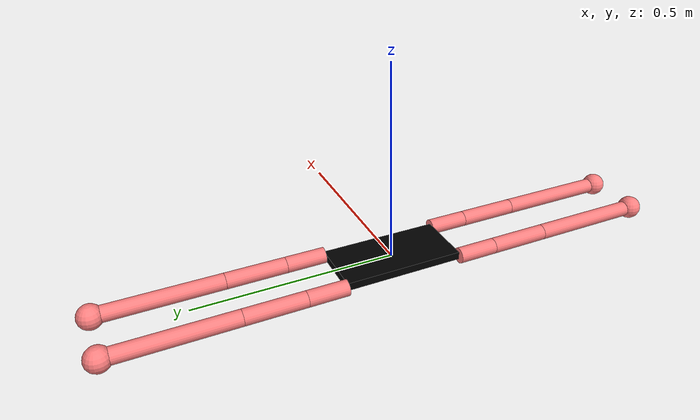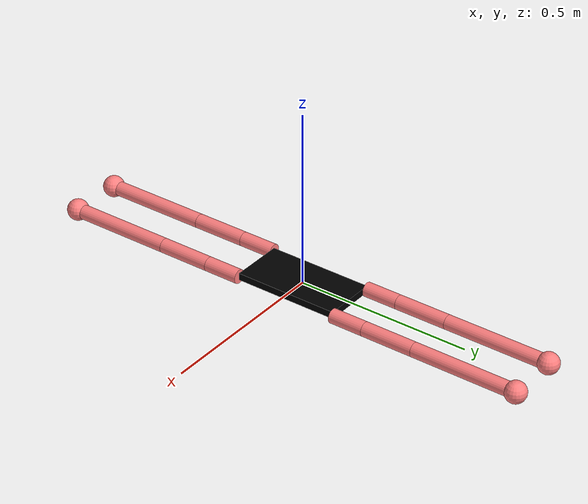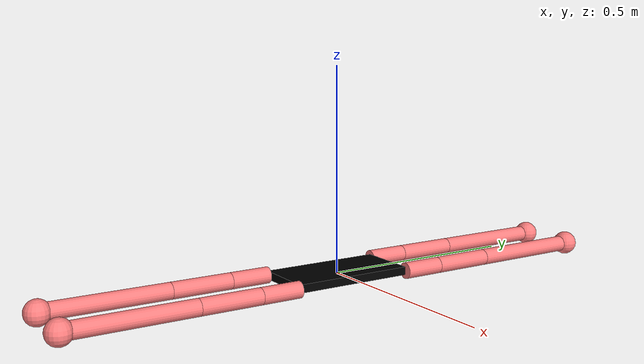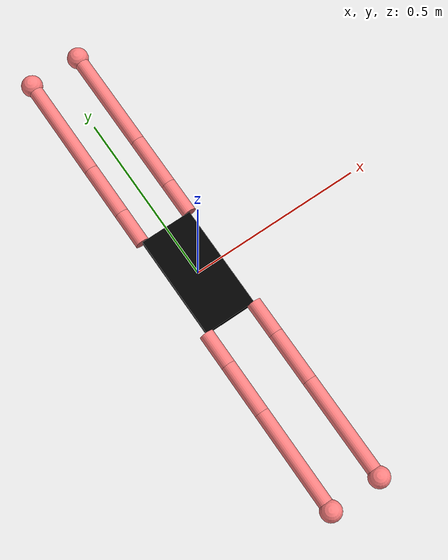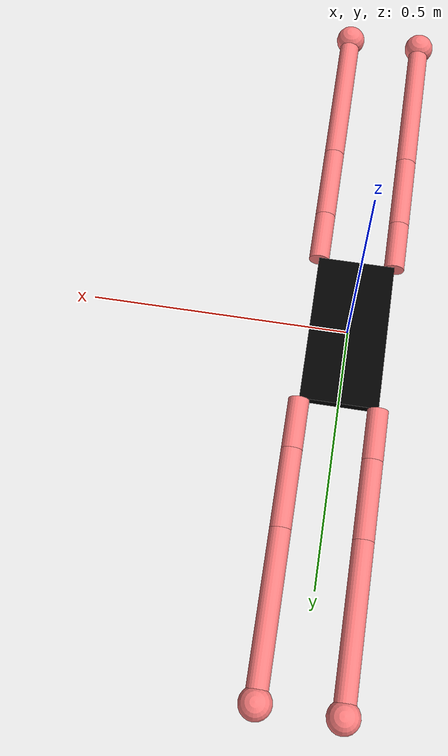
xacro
<?xml version="1.0"?>
<!--Namespace specification, mandatory for the file to parse properly.-->
<robot xmlns:xacro="http://www.ros.org/wiki/xacro" name="walking_robot">

<!-- TODO:
		- Add inertia
		- Add mass
-->

<!--///////////////////////////////////////////////////////////Constants\\\\\\\\\\\\\\\\\\\\\\\\\\\\\\\\\\\\\\\\\\\\\\\\\\\\\\\\\-->

	<xacro:property name="body_width" value="0.15" />
	<xacro:property name="body_length" value="0.3" />

	<xacro:property name="leg_radius" value="0.02" />
	<xacro:property name="link_1_length" value="0.1" />
	<xacro:property name="link_2_length" value="0.15" />
	<xacro:property name="link_3_length" value="0.3" />
	<xacro:property name="tip_radius" value="0.03" />

	<xacro:property name="light_red" value="1.0 0.5 0.5 1.0" />
	<xacro:property name="light_green" value="0.5 1.0 0.5 1.0" />
	<xacro:property name="light_blue" value="0.5 0.5 1.0 1.0" />
	<xacro:property name="light_grey" value="0.43 0.43 0.43 1.0" />

	<!--Link Macro-->
	<xacro:macro name="link_nb" params="name number color length r1 r2">
		<link name = "link_${number}_${name}">

			<visual>

				<geometry>

					<cylinder length="${length}" radius="${leg_radius}"/>

				</geometry>

				<xacro:if value="${number == 1}">
					<origin xyz = "0 ${r2*(link_1_length/2)} 0" rpy ="${pi/2} 0 0"/>
				</xacro:if>

				<xacro:if value="${number == 2}">
					<origin xyz = "0 ${r2*(link_2_length/2)} 0" rpy ="${pi/2} 0 0"/>
				</xacro:if>

				<xacro:if value="${number == 3}">
					<origin xyz = "0 ${r2*(link_3_length/2)} 0" rpy ="${pi/2} 0 0"/>
				</xacro:if>

				<material name="mat_${name}">

					<color rgba="${color}"/>

				</material>

			</visual>

			<collision>
				<geometry>
					<cylinder length="${length}" radius="${leg_radius}"/>
				</geometry>

				<xacro:if value="${number == 1}">
					<origin xyz = "0 ${r2*(link_1_length/2)} 0" rpy ="${pi/2} 0 0"/>
				</xacro:if>

				<xacro:if value="${number == 2}">
					<origin xyz = "0 ${r2*(link_2_length/2)} 0" rpy ="${pi/2} 0 0"/>
				</xacro:if>

				<xacro:if value="${number == 3}">
					<origin xyz = "0 ${r2*(link_3_length/2)} 0" rpy ="${pi/2} 0 0"/>

				</xacro:if>

			</collision>

		</link>

	</xacro:macro>

	<!-- Leg Tip Macro -->
	<xacro:macro name="leg_tip" params="leg_name">
		<link name="tip_${leg_name}">
			<visual>
				<geometry>
					<sphere radius="${tip_radius}" />
				</geometry>
				<material name="mat_${leg_name}" />
			</visual>
			<collision>
				<geometry>
					<sphere radius="${tip_radius}" />
				</geometry>
			</collision>
		</link>
	</xacro:macro>

	<!--Leg Macro-->

	<xacro:macro name="leg" params="name color r1 r2">
		<xacro:link_nb name="${name}" number = "1" color = "${color}" length="${link_1_length}" r1="${r1}" r2="${r2}"/>
		<xacro:link_nb name="${name}" number = "2" color = "${color}" length="${link_2_length}" r1="${r1}" r2="${r2}"/>
		<xacro:link_nb name="${name}" number = "3" color = "${color}" length="${link_3_length}" r1="${r1}" r2="${r2}"/>
	</xacro:macro>

<!--	Revolute Joint Macro-->
	<xacro:macro name="joint_mac" params="leg_name number parent_ child_ r1 r2">
		<joint name="joint_${number}_${leg_name}" type="continuous">
			<parent link="${parent_}"/>
			<child link ="${child_}"/>

		<xacro:if value="${number==1}">
			<origin xyz = "${r1*body_width/2} ${r2*(body_length/2)} 0" rpy="0 0 0"/>
			<axis xyz="0 0 ${r1*r2}" />
		</xacro:if>

		<xacro:if value="${number==2}">
			<origin xyz = "0 ${r2*link_1_length} 0" rpy="0 0 0"/>
			<axis xyz="${r2} 0 0" />
		</xacro:if>

		<xacro:if value="${number==3}">
			<origin xyz = "0 ${r2*link_2_length} 0" rpy="0 0 0"/>
			<axis xyz="${r2} 0 0" />
		</xacro:if>

		</joint>
	</xacro:macro>

	<!-- Fixed Joint Macro -->
	<xacro:macro name="tip_jt" params="leg_name r2">
		<joint name="${leg_name}_tip_joint" type="fixed">
			<parent link="link_3_${leg_name}" />
			<child link="tip_${leg_name}" />
			<origin xyz="0 ${r2*link_3_length} 0"/>
		</joint>
	</xacro:macro>

<!--////////////////////////////////////////////////////////ROBOT DEFINITION\\\\\\\\\\\\\\\\\\\\\\\\\\\\\\\\\\\\\\\\\\\\\\\\\\\\\-->
<!--World-->

<!--Robot base-->
	<link name="walker_base">
		<visual>
			<geometry>
				<box size = "${body_width} ${body_length} 0.02"/>
			</geometry>
			<material name="mat">
				<color rgba="0 0 0 1"/>
			</material>
		</visual>
	</link>

	<xacro:leg name="FL" color="${light_red}" r1="-1" r2="1"/>
	<xacro:leg name="FR" color="${light_red}" r1="1" r2="1"/>
	<xacro:leg name="HL" color="${light_red}" r1="-1" r2="-1"/>
	<xacro:leg name="HR" color="${light_red}" r1="1" r2="-1"/>

	<xacro:leg_tip leg_name="FL" />
	<xacro:leg_tip leg_name="FR" />
	<xacro:leg_tip leg_name="HL" />
	<xacro:leg_tip leg_name="HR" />

	<xacro:joint_mac leg_name="FL" number="1" parent_="walker_base" child_="link_1_FL" r1="-1" r2="1" />
	<xacro:joint_mac leg_name="FL" number="2" parent_="link_1_FL" child_="link_2_FL" r1="-1" r2="1" />
	<xacro:joint_mac leg_name="FL" number="3" parent_="link_2_FL" child_="link_3_FL" r1="-1" r2="1" />

	<xacro:joint_mac leg_name="FR" number="1" parent_="walker_base" child_="link_1_FR" r1="1" r2="1" />
	<xacro:joint_mac leg_name="FR" number="2" parent_="link_1_FR" child_="link_2_FR" r1="1" r2="1" />
	<xacro:joint_mac leg_name="FR" number="3" parent_="link_2_FR" child_="link_3_FR" r1="1" r2="1" />

	<xacro:joint_mac leg_name="HL" number="1" parent_="walker_base" child_="link_1_HL" r1="-1" r2="-1" />
	<xacro:joint_mac leg_name="HL" number="2" parent_="link_1_HL" child_="link_2_HL" r1="-1" r2="-1" />
	<xacro:joint_mac leg_name="HL" number="3" parent_="link_2_HL" child_="link_3_HL" r1="-1" r2="-1" />

	<xacro:joint_mac leg_name="HR" number="1" parent_="walker_base" child_="link_1_HR" r1="1" r2="-1" />
	<xacro:joint_mac leg_name="HR" number="2" parent_="link_1_HR" child_="link_2_HR" r1="1" r2="-1" />
	<xacro:joint_mac leg_name="HR" number="3" parent_="link_2_HR" child_="link_3_HR" r1="1" r2="-1" />

	<xacro:tip_jt leg_name="FL" r2="1" />
	<xacro:tip_jt leg_name="FR" r2="1" />
	<xacro:tip_jt leg_name="HL" r2="-1" />
	<xacro:tip_jt leg_name="HR" r2="-1" />

</robot>
